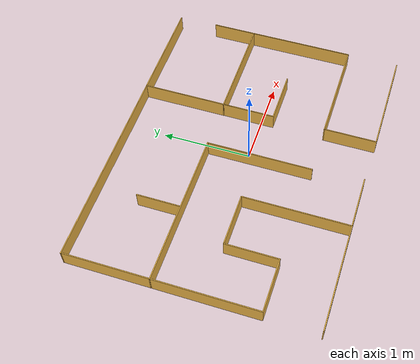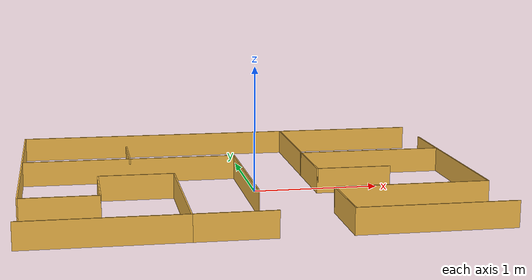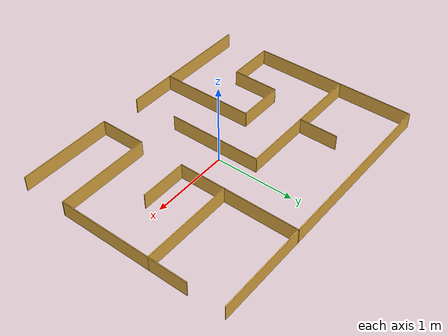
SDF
<?xml version='1.0'?>
<sdf version='1.7'>
  <model name='maze'>
    <pose>-0.089 0.0395 0 0 -0 0</pose>
    <link name='Wall_0'>
      <collision name='Wall_0_Collision'>
        <geometry>
          <box>
            <size>3.5 0.01 0.2</size>
          </box>
        </geometry>
        <pose>0 0 0.1 0 -0 0</pose>
      </collision>
      <visual name='Wall_0_Visual'>
        <pose>0 0 0.1 0 -0 0</pose>
        <geometry>
          <box>
            <size>3.5 0.01 0.2</size>
          </box>
        </geometry>
        <material>
          <script>
            <uri>file://media/materials/scripts/gazebo.material</uri>
            <name>Gazebo/Grey</name>
          </script>
          <ambient>1 0.764706 0.305882 1</ambient>
        </material>
        <meta>
          <layer>0</layer>
        </meta>
      </visual>
      <pose>-0.001 1.3625 0 0 -0 0</pose>
    </link>
    <link name='Wall_42'>
      <collision name='Wall_42_Collision'>
        <geometry>
          <box>
            <size>2.12 0.01 0.2</size>
          </box>
        </geometry>
        <pose>0 0 0.1 0 -0 0</pose>
      </collision>
      <visual name='Wall_42_Visual'>
        <pose>0 0 0.1 0 -0 0</pose>
        <geometry>
          <box>
            <size>2.12 0.01 0.2</size>
          </box>
        </geometry>
        <material>
          <script>
            <uri>file://media/materials/scripts/gazebo.material</uri>
            <name>Gazebo/Grey</name>
          </script>
          <ambient>1 0.764706 0.305882 1</ambient>
        </material>
        <meta>
          <layer>0</layer>
        </meta>
      </visual>
      <pose>-1.746 0.3075 0 0 -0 -1.5708</pose>
    </link>
    <link name='Wall_44'>
      <collision name='Wall_44_Collision'>
        <geometry>
          <box>
            <size>0.6 0.01 0.2</size>
          </box>
        </geometry>
        <pose>0 0 0.1 0 -0 0</pose>
      </collision>
      <visual name='Wall_44_Visual'>
        <pose>0 0 0.1 0 -0 0</pose>
        <geometry>
          <box>
            <size>0.6 0.01 0.2</size>
          </box>
        </geometry>
        <material>
          <script>
            <uri>file://media/materials/scripts/gazebo.material</uri>
            <name>Gazebo/Grey</name>
          </script>
          <ambient>1 0.764706 0.305882 1</ambient>
        </material>
        <meta>
          <layer>0</layer>
        </meta>
      </visual>
      <pose>-1.451 -0.7475 0 0 -0 0</pose>
    </link>
    <link name='Wall_46'>
      <collision name='Wall_46_Collision'>
        <geometry>
          <box>
            <size>0.6 0.01 0.2</size>
          </box>
        </geometry>
        <pose>0 0 0.1 0 -0 0</pose>
      </collision>
      <visual name='Wall_46_Visual'>
        <pose>0 0 0.1 0 -0 0</pose>
        <geometry>
          <box>
            <size>0.6 0.01 0.2</size>
          </box>
        </geometry>
        <material>
          <script>
            <uri>file://media/materials/scripts/gazebo.material</uri>
            <name>Gazebo/Grey</name>
          </script>
          <ambient>1 0.764706 0.305882 1</ambient>
        </material>
        <meta>
          <layer>0</layer>
        </meta>
      </visual>
      <pose>-1.156 -0.4525 0 0 -0 1.5708</pose>
    </link>
    <link name='Wall_48'>
      <collision name='Wall_48_Collision'>
        <geometry>
          <box>
            <size>0.6 0.01 0.2</size>
          </box>
        </geometry>
        <pose>0 0 0.1 0 -0 0</pose>
      </collision>
      <visual name='Wall_48_Visual'>
        <pose>0 0 0.1 0 -0 0</pose>
        <geometry>
          <box>
            <size>0.6 0.01 0.2</size>
          </box>
        </geometry>
        <material>
          <script>
            <uri>file://media/materials/scripts/gazebo.material</uri>
            <name>Gazebo/Grey</name>
          </script>
          <ambient>1 0.764706 0.305882 1</ambient>
        </material>
        <meta>
          <layer>0</layer>
        </meta>
      </visual>
      <pose>-0.861 -0.1575 0 0 -0 0</pose>
    </link>
    <link name='Wall_50'>
      <collision name='Wall_50_Collision'>
        <geometry>
          <box>
            <size>1.2 0.01 0.2</size>
          </box>
        </geometry>
        <pose>0 0 0.1 0 -0 0</pose>
      </collision>
      <visual name='Wall_50_Visual'>
        <pose>0 0 0.1 0 -0 0</pose>
        <geometry>
          <box>
            <size>1.2 0.01 0.2</size>
          </box>
        </geometry>
        <material>
          <script>
            <uri>file://media/materials/scripts/gazebo.material</uri>
            <name>Gazebo/Grey</name>
          </script>
          <ambient>1 0.764706 0.305882 1</ambient>
        </material>
        <meta>
          <layer>0</layer>
        </meta>
      </visual>
      <pose>-0.566 -0.7525 0 0 -0 -1.5708</pose>
    </link>
    <link name='Wall_52'>
      <collision name='Wall_52_Collision'>
        <geometry>
          <box>
            <size>0.61 0.01 0.2</size>
          </box>
        </geometry>
        <pose>0 0 0.1 0 -0 0</pose>
      </collision>
      <visual name='Wall_52_Visual'>
        <pose>0 0 0.1 0 -0 0</pose>
        <geometry>
          <box>
            <size>0.61 0.01 0.2</size>
          </box>
        </geometry>
        <material>
          <script>
            <uri>file://media/materials/scripts/gazebo.material</uri>
            <name>Gazebo/Grey</name>
          </script>
          <ambient>1 0.764706 0.305882 1</ambient>
        </material>
        <meta>
          <layer>0</layer>
        </meta>
      </visual>
      <pose>-0.266 -1.3475 0 0 -0 0</pose>
    </link>
    <link name='Wall_54'>
      <collision name='Wall_54_Collision'>
        <geometry>
          <box>
            <size>1.2 0.01 0.2</size>
          </box>
        </geometry>
        <pose>0 0 0.1 0 -0 0</pose>
      </collision>
      <visual name='Wall_54_Visual'>
        <pose>0 0 0.1 0 -0 0</pose>
        <geometry>
          <box>
            <size>1.2 0.01 0.2</size>
          </box>
        </geometry>
        <material>
          <script>
            <uri>file://media/materials/scripts/gazebo.material</uri>
            <name>Gazebo/Grey</name>
          </script>
          <ambient>1 0.764706 0.305882 1</ambient>
        </material>
        <meta>
          <layer>0</layer>
        </meta>
      </visual>
      <pose>-1.161 -1.3475 0 0 -0 3.14159</pose>
    </link>
    <link name='Wall_56'>
      <collision name='Wall_56_Collision'>
        <geometry>
          <box>
            <size>1.75 0.01 0.2</size>
          </box>
        </geometry>
        <pose>0 0 0.1 0 -0 0</pose>
      </collision>
      <visual name='Wall_56_Visual'>
        <pose>0 0 0.1 0 -0 0</pose>
        <geometry>
          <box>
            <size>1.75 0.01 0.2</size>
          </box>
        </geometry>
        <material>
          <script>
            <uri>file://media/materials/scripts/gazebo.material</uri>
            <name>Gazebo/Grey</name>
          </script>
          <ambient>1 0.764706 0.305882 1</ambient>
        </material>
        <meta>
          <layer>0</layer>
        </meta>
      </visual>
      <pose>-0.877 0.4095 0 0 -0 0</pose>
    </link>
    <link name='Wall_58'>
      <collision name='Wall_58_Collision'>
        <geometry>
          <box>
            <size>0.5 0.01 0.2</size>
          </box>
        </geometry>
        <pose>0 0 0.1 0 -0 0</pose>
      </collision>
      <visual name='Wall_58_Visual'>
        <pose>0 0 0.1 0 -0 0</pose>
        <geometry>
          <box>
            <size>0.5 0.01 0.2</size>
          </box>
        </geometry>
        <material>
          <script>
            <uri>file://media/materials/scripts/gazebo.material</uri>
            <name>Gazebo/Grey</name>
          </script>
          <ambient>1 0.764706 0.305882 1</ambient>
        </material>
        <meta>
          <layer>0</layer>
        </meta>
      </visual>
      <pose>-0.874 0.6545 0 0 -0 1.5708</pose>
    </link>
    <link name='Wall_60'>
      <collision name='Wall_60_Collision'>
        <geometry>
          <box>
            <size>1.2 0.01 0.2</size>
          </box>
        </geometry>
        <pose>0 0 0.1 0 -0 0</pose>
      </collision>
      <visual name='Wall_60_Visual'>
        <pose>0 0 0.1 0 -0 0</pose>
        <geometry>
          <box>
            <size>1.2 0.01 0.2</size>
          </box>
        </geometry>
        <material>
          <script>
            <uri>file://media/materials/scripts/gazebo.material</uri>
            <name>Gazebo/Grey</name>
          </script>
          <ambient>1 0.764706 0.305882 1</ambient>
        </material>
        <meta>
          <layer>0</layer>
        </meta>
      </visual>
      <pose>-0.007 -0.1855 0 0 -0 -1.5708</pose>
    </link>
    <link name='Wall_62'>
      <collision name='Wall_62_Collision'>
        <geometry>
          <box>
            <size>1.55 0.01 0.2</size>
          </box>
        </geometry>
        <pose>0 0 0.1 0 -0 0</pose>
      </collision>
      <visual name='Wall_62_Visual'>
        <pose>0 0 0.1 0 -0 0</pose>
        <geometry>
          <box>
            <size>1.55 0.01 0.2</size>
          </box>
        </geometry>
        <material>
          <script>
            <uri>file://media/materials/scripts/gazebo.material</uri>
            <name>Gazebo/Grey</name>
          </script>
          <ambient>1 0.764706 0.305882 1</ambient>
        </material>
        <meta>
          <layer>0</layer>
        </meta>
      </visual>
      <pose>0.569 0.5935 0 0 -0 -1.5708</pose>
    </link>
    <link name='Wall_64'>
      <collision name='Wall_64_Collision'>
        <geometry>
          <box>
            <size>0.6 0.01 0.2</size>
          </box>
        </geometry>
        <pose>0 0 0.1 0 -0 0</pose>
      </collision>
      <visual name='Wall_64_Visual'>
        <pose>0 0 0.1 0 -0 0</pose>
        <geometry>
          <box>
            <size>0.6 0.01 0.2</size>
          </box>
        </geometry>
        <material>
          <script>
            <uri>file://media/materials/scripts/gazebo.material</uri>
            <name>Gazebo/Grey</name>
          </script>
          <ambient>1 0.764706 0.305882 1</ambient>
        </material>
        <meta>
          <layer>0</layer>
        </meta>
      </visual>
      <pose>0.864 -0.1765 0 0 -0 0</pose>
    </link>
    <link name='Wall_66'>
      <collision name='Wall_66_Collision'>
        <geometry>
          <box>
            <size>1.2 0.01 0.2</size>
          </box>
        </geometry>
        <pose>0 0 0.1 0 -0 0</pose>
      </collision>
      <visual name='Wall_66_Visual'>
        <pose>0 0 0.1 0 -0 0</pose>
        <geometry>
          <box>
            <size>1.2 0.01 0.2</size>
          </box>
        </geometry>
        <material>
          <script>
            <uri>file://media/materials/scripts/gazebo.material</uri>
            <name>Gazebo/Grey</name>
          </script>
          <ambient>1 0.764706 0.305882 1</ambient>
        </material>
        <meta>
          <layer>0</layer>
        </meta>
      </visual>
      <pose>1.161 0.4165 0 0 -0 0</pose>
    </link>
    <link name='Wall_68'>
      <collision name='Wall_68_Collision'>
        <geometry>
          <box>
            <size>0.5 0.01 0.2</size>
          </box>
        </geometry>
        <pose>0 0 0.1 0 -0 0</pose>
      </collision>
      <visual name='Wall_68_Visual'>
        <pose>0 0 0.1 0 -0 0</pose>
        <geometry>
          <box>
            <size>0.5 0.01 0.2</size>
          </box>
        </geometry>
        <material>
          <script>
            <uri>file://media/materials/scripts/gazebo.material</uri>
            <name>Gazebo/Grey</name>
          </script>
          <ambient>1 0.764706 0.305882 1</ambient>
        </material>
        <meta>
          <layer>0</layer>
        </meta>
      </visual>
      <pose>1.756 0.6615 0 0 -0 1.5708</pose>
    </link>
    <link name='Wall_70'>
      <collision name='Wall_70_Collision'>
        <geometry>
          <box>
            <size>1.2 0.01 0.2</size>
          </box>
        </geometry>
        <pose>0 0 0.1 0 -0 0</pose>
      </collision>
      <visual name='Wall_70_Visual'>
        <pose>0 0 0.1 0 -0 0</pose>
        <geometry>
          <box>
            <size>1.2 0.01 0.2</size>
          </box>
        </geometry>
        <material>
          <script>
            <uri>file://media/materials/scripts/gazebo.material</uri>
            <name>Gazebo/Grey</name>
          </script>
          <ambient>1 0.764706 0.305882 1</ambient>
        </material>
        <meta>
          <layer>0</layer>
        </meta>
      </visual>
      <pose>1.756 -0.1785 0 0 -0 -1.5708</pose>
    </link>
    <link name='Wall_72'>
      <collision name='Wall_72_Collision'>
        <geometry>
          <box>
            <size>1.2 0.01 0.2</size>
          </box>
        </geometry>
        <pose>0 0 0.1 0 -0 0</pose>
      </collision>
      <visual name='Wall_72_Visual'>
        <pose>0 0 0.1 0 -0 0</pose>
        <geometry>
          <box>
            <size>1.2 0.01 0.2</size>
          </box>
        </geometry>
        <material>
          <script>
            <uri>file://media/materials/scripts/gazebo.material</uri>
            <name>Gazebo/Grey</name>
          </script>
          <ambient>1 0.764706 0.305882 1</ambient>
        </material>
        <meta>
          <layer>0</layer>
        </meta>
      </visual>
      <pose>1.161 -0.7735 0 0 -0 3.14159</pose>
    </link>
    <link name='Wall_74'>
      <collision name='Wall_74_Collision'>
        <geometry>
          <box>
            <size>0.6 0.01 0.2</size>
          </box>
        </geometry>
        <pose>0 0 0.1 0 -0 0</pose>
      </collision>
      <visual name='Wall_74_Visual'>
        <pose>0 0 0.1 0 -0 0</pose>
        <geometry>
          <box>
            <size>0.6 0.01 0.2</size>
          </box>
        </geometry>
        <material>
          <script>
            <uri>file://media/materials/scripts/gazebo.material</uri>
            <name>Gazebo/Grey</name>
          </script>
          <ambient>1 0.764706 0.305882 1</ambient>
        </material>
        <meta>
          <layer>0</layer>
        </meta>
      </visual>
      <pose>0.566 -1.0685 0 0 -0 -1.5708</pose>
    </link>
    <link name='Wall_76'>
      <collision name='Wall_76_Collision'>
        <geometry>
          <box>
            <size>1.2 0.01 0.2</size>
          </box>
        </geometry>
        <pose>0 0 0.1 0 -0 0</pose>
      </collision>
      <visual name='Wall_76_Visual'>
        <pose>0 0 0.1 0 -0 0</pose>
        <geometry>
          <box>
            <size>1.2 0.01 0.2</size>
          </box>
        </geometry>
        <material>
          <script>
            <uri>file://media/materials/scripts/gazebo.material</uri>
            <name>Gazebo/Grey</name>
          </script>
          <ambient>1 0.764706 0.305882 1</ambient>
        </material>
        <meta>
          <layer>0</layer>
        </meta>
      </visual>
      <pose>1.161 -1.3635 0 0 -0 0</pose>
    </link>
    <static>1</static>
  </model>
</sdf>
